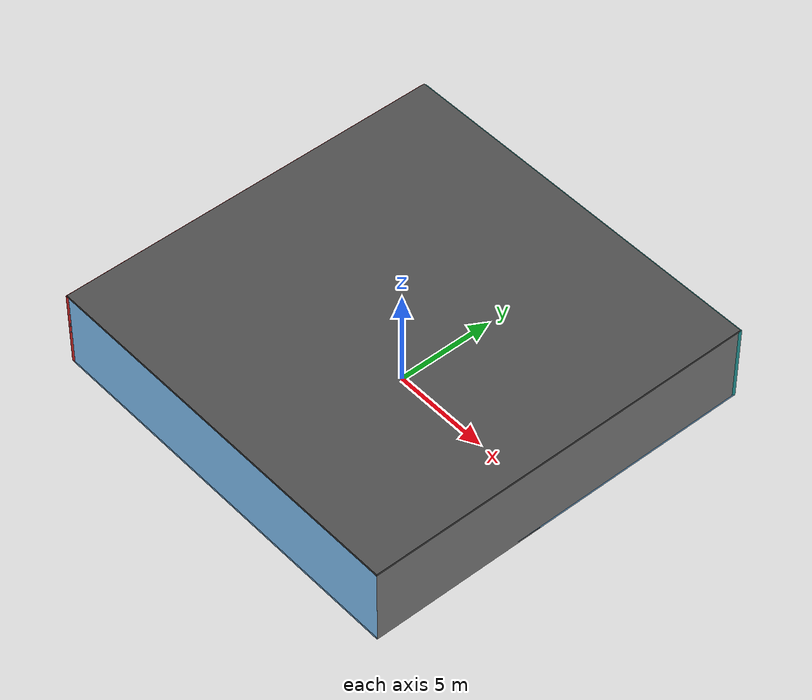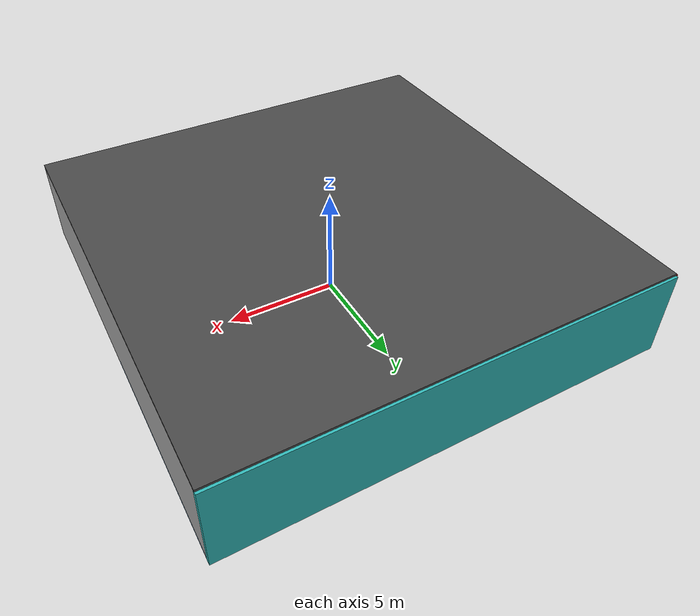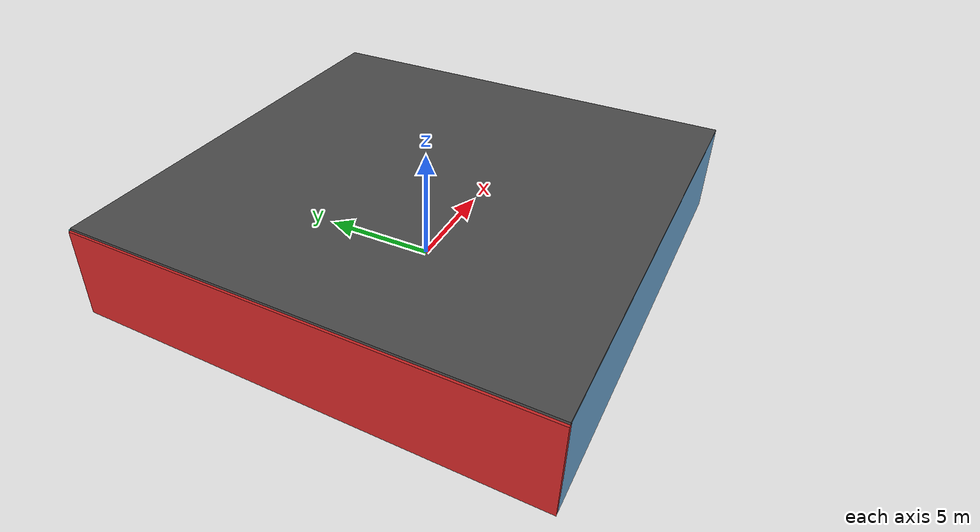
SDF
<sdf version="1.4">
 <world name="default">
  <physics type="ode">
   <max_step_size>0.001</max_step_size>
   <real_time_factor>1</real_time_factor>
   <real_time_update_rate>1000</real_time_update_rate>
   <gravity>0 0 -9.8</gravity>
  </physics>
  <scene><ambient>0.4 0.4 0.4 1</ambient><background>0.7 0.7 0.7 1</background><shadows>1</shadows></scene>
  <model name="Surrounding">
   <static>1</static>
   <link name="Ceiling">
    <collision name="Ceiling_Collision"><geometry><box><size>20 20 0.1</size></box></geometry></collision>
    <visual name="Ceiling_Visual">
     <geometry><box><size>20 20 0.1</size></box></geometry>
     <material>
      <script><uri>file://media/materials/scripts/gazebo.material</uri><name>Gazebo/DarkGrey</name></script>
     </material>
    </visual>
    <pose>0 0 4.05 0 0 0</pose>
   </link>
   <link name="Wall_South">
    <collision name="Wall_South_Collision">
     <geometry><box><size>20 0 4</size></box></geometry>
     <pose>0 0 2 0 -0 0</pose>
    </collision>
    <visual name="Wall_South_Visual">
     <pose>0 0 2 0 -0 0</pose>
     <geometry><box><size>20 0 4</size></box></geometry>
     <material>
      <script><uri>file://media/materials/scripts/gazebo.material</uri><name>Gazebo/SkyBlue</name></script>
     </material>
    </visual>
    <velocity_decay><linear>0</linear><angular>0</angular></velocity_decay>
    <pose>0 -10 0 0 -0 0</pose>
   </link>
   <link name="Wall_East">
    <collision name="Wall_21_Collision">
     <geometry><box><size>20 0 4</size></box></geometry>
     <pose>0 0 2 0 -0 0</pose>
    </collision>
    <visual name="Wall_21_Visual">
     <pose>0 0 2 0 -0 0</pose>
     <geometry><box><size>20 0 4</size></box></geometry>
     <material>
      <script><uri>file://media/materials/scripts/gazebo.material</uri><name>Gazebo/Grey</name></script>
     </material>
    </visual>
    <velocity_decay><linear>0</linear><angular>0</angular></velocity_decay>
    <pose>10 0 0 0 -0 1.5708</pose>
   </link>
   <link name="Wall_North">
    <collision name="Wall_22_Collision">
     <geometry><box><size>20 0.2 4</size></box></geometry>
     <pose>0 0 2 0 -0 0</pose>
    </collision>
    <visual name="Wall_22_Visual">
     <pose>0 0 2 0 -0 0</pose>
     <geometry><box><size>20 0.2 4</size></box></geometry>
     <material>
      <script><uri>file://media/materials/scripts/gazebo.material</uri><name>Gazebo/TurquoiseGlow</name></script>
     </material>
    </visual>
    <velocity_decay><linear>0</linear><angular>0</angular></velocity_decay>
    <pose>0 10 0 0 -0 0</pose>
   </link>
   <link name="Wall_West">
    <collision name="Wall_23_Collision">
     <geometry><box><size>20 0.2 4</size></box></geometry>
     <pose>0 0 2 0 -0 0</pose>
    </collision>
    <visual name="Wall_23_Visual">
     <pose>0 0 2 0 -0 0</pose>
     <geometry><box><size>20 0.2 4</size></box></geometry>
     <material>
      <script><uri>file://media/materials/scripts/gazebo.material</uri><name>Gazebo/Red</name></script>
     </material>
    </visual>
    <velocity_decay><linear>0</linear><angular>0</angular></velocity_decay>
    <pose>-10 0 0 0 0 -1.5708</pose>
   </link>
   <link name="Ground_link">
    <collision name="collision">
     <pose>0 0 .05 0 -0 0</pose>
     <geometry><box><size>20 20 0.1</size></box></geometry>
    </collision>
    <visual name="visual">
     <pose>0 0 .05 0 -0 0</pose>
     <geometry><box><size>20 20 0.1</size></box></geometry>
     <material>
      <script><uri>file://media/materials/scripts/gazebo.material</uri><name>Gazebo/SkyBlue</name></script>
     </material>
    </visual>
   </link>
   <static>1</static>
  </model>
  <spherical_coordinates>
   <surface_model>EARTH_WGS84</surface_model>
   <latitude_deg>0</latitude_deg>
   <longitude_deg>0</longitude_deg>
   <elevation>0</elevation>
   <heading_deg>0</heading_deg>
  </spherical_coordinates>
  <light name="lightball_0" type="diffuse">
   <diffuse>0.8 0.8 0.8 1</diffuse>
   <specular>0.2 0.2 0.2 1</specular>
   <attenuation>
    <range>100</range>
    <constant>0.7</constant>
    <linear>0.01</linear>
    <quadratic>0.001</quadratic>
   </attenuation>
   <direction>-0.5 0.1 -0.9</direction>
   <pose>-2.53146726751 -1.73597785483 2.41256352775 0 0 0</pose>
  </light>
  <light name="lightball_1" type="diffuse">
   <diffuse>0.8 0.8 0.8 1</diffuse>
   <specular>0.2 0.2 0.2 1</specular>
   <attenuation>
    <range>100</range>
    <constant>0.7</constant>
    <linear>0.01</linear>
    <quadratic>0.001</quadratic>
   </attenuation>
   <direction>-0.5 0.1 -0.9</direction>
   <pose>1.21664571712 -4.4150524968 1.41395930096 0 0 0</pose>
  </light>
  <light name="lightball_2" type="diffuse">
   <diffuse>0.8 0.8 0.8 1</diffuse>
   <specular>0.2 0.2 0.2 1</specular>
   <attenuation>
    <range>100</range>
    <constant>0.7</constant>
    <linear>0.01</linear>
    <quadratic>0.001</quadratic>
   </attenuation>
   <direction>-0.5 0.1 -0.9</direction>
   <pose>-5.62556201995 -6.82898764995 0.891670921013 0 0 0</pose>
  </light>
  <light name="lightball_3" type="diffuse">
   <diffuse>0.8 0.8 0.8 1</diffuse>
   <specular>0.2 0.2 0.2 1</specular>
   <attenuation>
    <range>100</range>
    <constant>0.7</constant>
    <linear>0.01</linear>
    <quadratic>0.001</quadratic>
   </attenuation>
   <direction>-0.5 0.1 -0.9</direction>
   <pose>1.67421006112 3.59899909754 1.1266352718 0 0 0</pose>
  </light>
  <light name="lightball_4" type="diffuse">
   <diffuse>0.8 0.8 0.8 1</diffuse>
   <specular>0.2 0.2 0.2 1</specular>
   <attenuation>
    <range>100</range>
    <constant>0.7</constant>
    <linear>0.01</linear>
    <quadratic>0.001</quadratic>
   </attenuation>
   <direction>-0.5 0.1 -0.9</direction>
   <pose>5.78286555013 7.99266834318 3.01042726191 0 0 0</pose>
  </light>
  <light name="lightball_5" type="diffuse">
   <diffuse>0.8 0.8 0.8 1</diffuse>
   <specular>0.2 0.2 0.2 1</specular>
   <attenuation>
    <range>100</range>
    <constant>0.7</constant>
    <linear>0.01</linear>
    <quadratic>0.001</quadratic>
   </attenuation>
   <direction>-0.5 0.1 -0.9</direction>
   <pose>-1.79288785186 -0.307289073172 3.46354312114 0 0 0</pose>
  </light>
  <light name="lightball_6" type="diffuse">
   <diffuse>0.8 0.8 0.8 1</diffuse>
   <specular>0.2 0.2 0.2 1</specular>
   <attenuation>
    <range>100</range>
    <constant>0.7</constant>
    <linear>0.01</linear>
    <quadratic>0.001</quadratic>
   </attenuation>
   <direction>-0.5 0.1 -0.9</direction>
   <pose>6.40864129881 -3.29458765013 2.82100076494 0 0 0</pose>
  </light>
  <light name="lightball_7" type="diffuse">
   <diffuse>0.8 0.8 0.8 1</diffuse>
   <specular>0.2 0.2 0.2 1</specular>
   <attenuation>
    <range>100</range>
    <constant>0.7</constant>
    <linear>0.01</linear>
    <quadratic>0.001</quadratic>
   </attenuation>
   <direction>-0.5 0.1 -0.9</direction>
   <pose>3.33502625739 -5.55103516125 1.02313464936 0 0 0</pose>
  </light>
  <light name="lightball_8" type="diffuse">
   <diffuse>0.8 0.8 0.8 1</diffuse>
   <specular>0.2 0.2 0.2 1</specular>
   <attenuation>
    <range>100</range>
    <constant>0.7</constant>
    <linear>0.01</linear>
    <quadratic>0.001</quadratic>
   </attenuation>
   <direction>-0.5 0.1 -0.9</direction>
   <pose>-4.64240622993 -7.36958212847 3.13378626224 0 0 0</pose>
  </light>
  <light name="lightball_9" type="diffuse">
   <diffuse>0.8 0.8 0.8 1</diffuse>
   <specular>0.2 0.2 0.2 1</specular>
   <attenuation>
    <range>100</range>
    <constant>0.7</constant>
    <linear>0.01</linear>
    <quadratic>0.001</quadratic>
   </attenuation>
   <direction>-0.5 0.1 -0.9</direction>
   <pose>2.24003903338 -1.34167113591 1.3769569335 0 0 0</pose>
  </light>
  <light name="lightball_10" type="diffuse">
   <diffuse>0.8 0.8 0.8 1</diffuse>
   <specular>0.2 0.2 0.2 1</specular>
   <attenuation>
    <range>100</range>
    <constant>0.7</constant>
    <linear>0.01</linear>
    <quadratic>0.001</quadratic>
   </attenuation>
   <direction>-0.5 0.1 -0.9</direction>
   <pose>-3.30339602794 -6.83384031483 2.8967322663 0 0 0</pose>
  </light>
  <include>
   <uri>model://robocup_3Dsim_goal</uri>
   <pose>-6.87280014438 7.42817097828 0 0 0 2.03227357491</pose>
  </include>
  <include>
   <uri>model://textured_shapes</uri>
   <pose>-4.25817710904 -7.15730512381 0 0 0 1.58454505646</pose>
  </include>
  <include><uri>model://table</uri><pose>-1.20825770311 -8.14446550472 0 0 0 0.866161476688</pose></include>
  <include>
   <uri>model://robocup_3Dsim_goal</uri>
   <pose>-1.69760509417 -4.93912115156 0 0 0 3.13201966039</pose>
  </include>
  <include><uri>model://table</uri><pose>-1.7634264504 5.18177995407 0 0 0 3.0093683425</pose></include>
  <include>
   <uri>model://textured_shapes</uri>
   <pose>-1.55029331277 7.55880343702 0 0 0 2.50915753445</pose>
  </include>
  <include>
   <uri>model://construction_cone</uri>
   <pose>4.92548830136 -8.21388433294 0 0 0 2.55064619123</pose>
  </include>
  <include><uri>model://cabinet</uri><pose>7.85457616687 1.05804383274 0 0 0 2.54922332086</pose></include>
  <include>
   <uri>model://construction_cone</uri>
   <pose>6.86544603832 4.50599751866 0 0 0 3.06066017764</pose>
  </include>
 </world>
</sdf>

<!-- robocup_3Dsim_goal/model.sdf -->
<sdf version="1.5">
  <model name="robocup_3d_goal">
    <static>true</static>
    <link name="left_post">
      <pose>0 1.05 0.45 0 0 0</pose>
      <collision name="collision">
        <geometry>
          <cylinder>
            <radius>0.05</radius>
            <length>0.9</length>
          </cylinder>
        </geometry>
      </collision>
      <visual name="visual">
        <geometry>
          <cylinder>
            <radius>0.05</radius>
            <length>0.9</length>
          </cylinder>
        </geometry>
        <material>
          <script>
            <uri>file://media/materials/scripts/gazebo.material</uri>
            <name>Gazebo/ZincYellow</name>
          </script>
        </material>
      </visual>
    </link>
    <link name="left_support_horiz_lower">
      <pose>0.30 1.05 0.01 0 0 0</pose>
      <collision name="collision">
        <geometry>
          <box>
            <size>0.50 0.02 0.02</size>
          </box>
        </geometry>
      </collision>
      <visual name="visual">
        <geometry>
          <box>
            <size>0.50 0.02 0.02</size>
          </box>
        </geometry>
        <material>
          <script>
            <uri>file://media/materials/scripts/gazebo.material</uri>
            <name>Gazebo/White</name>
          </script>
        </material>
      </visual>
    </link>
    <link name="left_support_horiz_upper">
      <pose>0.30 1.05 0.79 0 0 0</pose>
      <collision name="collision">
        <geometry>
          <box>
            <size>0.50 0.02 0.02</size>
          </box>
        </geometry>
      </collision>
      <visual name="visual">
        <geometry>
          <box>
            <size>0.50 0.02 0.02</size>
          </box>
        </geometry>
        <material>
          <script>
            <uri>file://media/materials/scripts/gazebo.material</uri>
            <name>Gazebo/White</name>
          </script>
        </material>
      </visual>
    </link>
    <link name="left_support_vertical">
      <pose>0.56 1.05 0.4 0 1.5708 0</pose>
      <collision name="collision">
        <geometry>
          <box>
            <size>0.80 0.02 0.02</size>
          </box>
        </geometry>
      </collision>
      <visual name="visual">
        <geometry>
          <box>
            <size>0.80 0.02 0.02</size>
          </box>
        </geometry>
        <material>
          <script>
            <uri>file://media/materials/scripts/gazebo.material</uri>
            <name>Gazebo/White</name>
          </script>
        </material>
      </visual>
    </link>
    <link name="right_support_horiz_lower">
      <pose>0.30 -1.05 0.01 0 0 0</pose>
      <collision name="collision">
        <geometry>
          <box>
            <size>0.50 0.02 0.02</size>
          </box>
        </geometry>
      </collision>
      <visual name="visual">
        <geometry>
          <box>
            <size>0.50 0.02 0.02</size>
          </box>
        </geometry>
        <material>
          <script>
            <uri>file://media/materials/scripts/gazebo.material</uri>
            <name>Gazebo/White</name>
          </script>
        </material>
      </visual>
    </link>
    <link name="right_support_horiz_upper">
      <pose>0.30 -1.05 0.79 0 0 0</pose>
      <collision name="collision">
        <geometry>
          <box>
            <size>0.50 0.02 0.02</size>
          </box>
        </geometry>
      </collision>
      <visual name="visual">
        <geometry>
          <box>
            <size>0.50 0.02 0.02</size>
          </box>
        </geometry>
        <material>
          <script>
            <uri>file://media/materials/scripts/gazebo.material</uri>
            <name>Gazebo/White</name>
          </script>
        </material>
      </visual>
    </link>
    <link name="right_support_vertical">
      <pose>0.56 -1.05 0.4 0 1.5708 0</pose>
      <collision name="collision">
        <geometry>
          <box>
            <size>0.80 0.02 0.02</size>
          </box>
        </geometry>
      </collision>
      <visual name="visual">
        <geometry>
          <box>
            <size>0.80 0.02 0.02</size>
          </box>
        </geometry>
        <material>
          <script>
            <uri>file://media/materials/scripts/gazebo.material</uri>
            <name>Gazebo/White</name>
          </script>
        </material>
      </visual>
    </link>
    <link name="center_support_horiz_lower">
      <pose>0.56 0 0.01 0 1.5708 0</pose>
      <collision name="collision">
        <geometry>
          <box>
            <size>0.02 2.08 0.02</size>
          </box>
        </geometry>
      </collision>
      <visual name="visual">
        <geometry>
          <box>
            <size>0.02 2.08 0.02</size>
          </box>
        </geometry>
        <material>
          <script>
            <uri>file://media/materials/scripts/gazebo.material</uri>
            <name>Gazebo/White</name>
          </script>
        </material>
      </visual>
    </link>
    <link name="center_support_horiz_upper">
      <pose>0.56 0 0.79 0 1.5708 0</pose>
      <collision name="collision">
        <geometry>
          <box>
            <size>0.02 2.08 0.02</size>
          </box>
        </geometry>
      </collision>
      <visual name="visual">
        <geometry>
          <box>
            <size>0.02 2.08 0.02</size>
          </box>
        </geometry>
        <material>
          <script>
            <uri>file://media/materials/scripts/gazebo.material</uri>
            <name>Gazebo/White</name>
          </script>
        </material>
      </visual>
    </link>
    <link name="right_post">
      <pose>0 -1.05 0.45 0 0 0</pose>
      <collision name="collision">
        <geometry>
          <cylinder>
            <radius>0.05</radius>
            <length>0.9</length>
          </cylinder>
        </geometry>
      </collision>
      <visual name="visual">
        <geometry>
          <cylinder>
            <radius>0.05</radius>
            <length>0.9</length>
          </cylinder>
        </geometry>
        <material>
          <script>
            <uri>file://media/materials/scripts/gazebo.material</uri>
            <name>Gazebo/ZincYellow</name>
          </script>
        </material>
      </visual>
    </link>
    <link name="crossbar">
      <pose>0 0 0.85 1.57 1.57 0</pose>
      <collision name="collision">
        <geometry>
          <cylinder>
            <radius>0.05</radius>
            <length>2.0</length>
          </cylinder>
        </geometry>
      </collision>
      <visual name="visual">
        <geometry>
          <cylinder>
            <radius>0.05</radius>
            <length>2.0</length>
          </cylinder>
        </geometry>
        <material>
          <script>
            <uri>file://media/materials/scripts/gazebo.material</uri>
            <name>Gazebo/ZincYellow</name>
          </script>
        </material>
      </visual>
    </link>
    <link name="center_net">
      <pose>0.56 0 0.40 0 0 0</pose>
      <collision name="collision">
        <geometry>
          <box>
            <size>0.01 2.1 0.80</size>
          </box>
        </geometry>
      </collision>
      <visual name="visual">
        <geometry>
          <box>
            <size>0.01 2.1 0.80</size>
          </box>
        </geometry>
        <material>
          <script>
            <uri>model://../model_source/models/robocup09_spl_field/materials/scripts/</uri>
            <uri>model://../model_source/models/robocup09_spl_field/materials/textures/</uri>
            <name>RoboCup/Net</name>
          </script>
        </material>
      </visual>
    </link>
    <link name="left_net">
      <pose>0.30 1.05 0.40 0 0 0</pose>
      <collision name="collision">
        <geometry>
          <box>
            <size>0.50 0.01 0.76</size>
          </box>
        </geometry>
      </collision>
      <visual name="visual">
        <geometry>
          <box>
            <size>0.50 0.01 0.76</size>
          </box>
        </geometry>
        <material>
          <script>
            <uri>model://../model_source/models/robocup09_spl_field/materials/scripts/</uri>
            <uri>model://../model_source/models/robocup09_spl_field/materials/textures/</uri>
            <name>RoboCup/Net</name>
          </script>
        </material>
      </visual>
    </link>
    <link name="right_net">
      <pose>0.30 -1.05 0.40 0 0 0</pose>
      <collision name="collision">
        <geometry>
          <box>
            <size>0.50 0.01 0.76</size>
          </box>
        </geometry>
      </collision>
      <visual name="visual">
        <geometry>
          <box>
            <size>0.50 0.01 0.76</size>
          </box>
        </geometry>
        <material>
          <script>
            <uri>model://../model_source/models/robocup09_spl_field/materials/scripts/</uri>
            <uri>model://../model_source/models/robocup09_spl_field/materials/textures/</uri>
            <name>RoboCup/Net</name>
          </script>
        </material>
      </visual>
    </link>
  </model>
</sdf>

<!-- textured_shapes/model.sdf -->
<sdf version="1.6">
  <model name="textured_shapes">
    <pose>0 0 0.5 0 0 0</pose>
    <link name="box">
      <pose>0 -1.5 0 0 0 0</pose>
      <collision name="collision">
        <geometry>
          <box>
            <size>1 1 1</size>
          </box>
        </geometry>
      </collision>
      <visual name="visual">
        <geometry>
          <box>
            <size>1 1 1</size>
          </box>
        </geometry>
        <material>
          <script>
            <uri>model://../model_source/models/textured_shapes/materials/scripts</uri>
            <uri>model://../model_source/models/textured_shapes/materials/textures</uri>
            <name>TexturedShape/Squares</name>
          </script>
        </material>
      </visual>
    </link>
    <link name="sphere">
      <collision name="collision">
        <geometry>
          <sphere>
            <radius>0.5</radius>
          </sphere>
        </geometry>
      </collision>
      <visual name="visual">
        <geometry>
          <sphere>
            <radius>0.5</radius>
          </sphere>
        </geometry>
        <material>
          <script>
            <uri>model://../model_source/models/textured_shapes/materials/scripts</uri>
            <uri>model://../model_source/models/textured_shapes/materials/textures</uri>
            <name>TexturedShape/Squares</name>
          </script>
        </material>
      </visual>
    </link>
    <link name="cylinder">
      <pose>0 1.5 0 0 0 0</pose>
      <collision name="collision">
        <geometry>
          <cylinder>
            <radius>0.5</radius>
            <length>1</length>
          </cylinder>
        </geometry>
      </collision>
      <visual name="visual">
        <geometry>
          <cylinder>
            <radius>0.5</radius>
            <length>1</length>
          </cylinder>
        </geometry>
        <material>
          <script>
            <uri>model://../model_source/models/textured_shapes/materials/scripts</uri>
            <uri>model://../model_source/models/textured_shapes/materials/textures</uri>
            <name>TexturedShape/Squares</name>
          </script>
        </material>
      </visual>
    </link>
  </model>
</sdf>

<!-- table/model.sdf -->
<sdf version="1.5">
  <model name="table">
    <static>true</static>
    <link name="link">
      <collision name="surface">
        <pose>0 0 1.0 0 0 0</pose>
        <geometry>
          <box>
            <size>1.5 0.8 0.03</size>
          </box>
        </geometry>
        <surface>
          <friction>
            <ode>
              <mu>0.6</mu>
              <mu2>0.6</mu2>
            </ode>
          </friction>
        </surface>
      </collision>
      <visual name="visual1">
        <pose>0 0 1.0 0 0 0</pose>
        <geometry>
          <box>
            <size>1.5 0.8 0.03</size>
          </box>
        </geometry>
        <material>
          <script>
            <uri>model://media/materials/scripts/gazebo.material</uri>
            <name>Gazebo/Wood</name>
          </script>
        </material>
      </visual>
      <collision name="front_left_leg">
        <pose>0.68 0.38 0.5 0 0 0</pose>
        <geometry>
          <cylinder>
            <radius>0.02</radius>
            <length>1.0</length>
          </cylinder>
        </geometry>
      </collision>
      <visual name="front_left_leg">
        <pose>0.68 0.38 0.5 0 0 0</pose>
        <geometry>
          <cylinder>
            <radius>0.02</radius>
            <length>1.0</length>
          </cylinder>
        </geometry>
        <material>
          <script>
            <uri>model://media/materials/scripts/gazebo.material</uri>
            <name>Gazebo/Grey</name>
          </script>
        </material>
      </visual>
      <collision name="front_right_leg">
        <pose>0.68 -0.38 0.5 0 0 0</pose>
        <geometry>
          <cylinder>
            <radius>0.02</radius>
            <length>1.0</length>
          </cylinder>
        </geometry>
      </collision>
      <visual name="front_right_leg">
        <pose>0.68 -0.38 0.5 0 0 0</pose>
        <geometry>
          <cylinder>
            <radius>0.02</radius>
            <length>1.0</length>
          </cylinder>
        </geometry>
        <material>
          <script>
            <uri>model://media/materials/scripts/gazebo.material</uri>
            <name>Gazebo/Grey</name>
          </script>
        </material>
      </visual>
      <collision name="back_right_leg">
        <pose>-0.68 -0.38 0.5 0 0 0</pose>
        <geometry>
          <cylinder>
            <radius>0.02</radius>
            <length>1.0</length>
          </cylinder>
        </geometry>
      </collision>
      <visual name="back_right_leg">
        <pose>-0.68 -0.38 0.5 0 0 0</pose>
        <geometry>
          <cylinder>
            <radius>0.02</radius>
            <length>1.0</length>
          </cylinder>
        </geometry>
        <material>
          <script>
            <uri>model://media/materials/scripts/gazebo.material</uri>
            <name>Gazebo/Grey</name>
          </script>
        </material>
      </visual>
      <collision name="back_left_leg">
        <pose>-0.68 0.38 0.5 0 0 0</pose>
        <geometry>
          <cylinder>
            <radius>0.02</radius>
            <length>1.0</length>
          </cylinder>
        </geometry>
      </collision>
      <visual name="back_left_leg">
        <pose>-0.68 0.38 0.5 0 0 0</pose>
        <geometry>
          <cylinder>
            <radius>0.02</radius>
            <length>1.0</length>
          </cylinder>
        </geometry>
        <material>
          <script>
            <uri>model://media/materials/scripts/gazebo.material</uri>
            <name>Gazebo/Grey</name>
          </script>
        </material>
      </visual>
    </link>
  </model>
</sdf>

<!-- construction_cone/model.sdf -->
<sdf version="1.5">
  <model name="Construction Cone">
    <link name="link">
      <collision name="collision">
        <geometry>
          <mesh>
            <scale>10 10 10</scale>
            <uri>file://isr-testbed/construction_cone/meshes/construction_cone.dae</uri>
          </mesh>
        </geometry>
      </collision>
      <visual name="visual">
        <geometry>
          <mesh>
            <scale>10 10 10</scale>
            <uri>file://isr-testbed/construction_cone/meshes/construction_cone.dae</uri>
          </mesh>
        </geometry>
      </visual>
    </link>
  </model>
</sdf>

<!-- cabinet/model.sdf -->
<sdf version="1.5">
  <model name="cabinet">
    <static>true</static>
    <link name="cabinet_bottom_plate">
      <inertial>
        <pose>0 0 -1 0 0 0</pose>
        <inertia>
          <ixx>2.050000</ixx>
          <ixy>0</ixy>
          <ixz>0</ixz>
          <iyy>2.050000</iyy>
          <iyz>0</iyz>
          <izz>2.050000</izz>
        </inertia>
        <mass>25.000000</mass>
      </inertial>
      <collision name="cabinet_bottom_plate_geom">
        <pose>0 0 0.010000 0 0 0</pose>
        <geometry>
          <box>
            <size>0.450000 0.450000 0.020000</size>
          </box>
        </geometry>
      </collision>
      <visual name="cabinet_bottom_plate_geom_visual">
        <pose>0 0 0.010000 0 0 0</pose>
        <geometry>
          <box>
            <size>0.450000 0.450000 0.020000</size>
          </box>
        </geometry>
        <material>
          <script>
            <uri>model://media/materials/scripts/gazebo.material</uri>
            <name>Gazebo/Wood</name>
          </script>
        </material>
      </visual>
      <collision name="cabinet_bottom_plate_geom_cabinet_back_plate">
        <pose>0.235000 0 0.510000 0 0 0</pose>
        <geometry>
          <box>
            <size>0.020000 0.450000 1.020000</size>
          </box>
        </geometry>
      </collision>
      <visual name="cabinet_bottom_plate_geom_cabinet_back_plate_visual">
        <pose>0.235000 0 0.510000 0 0 0</pose>
        <geometry>
          <box>
            <size>0.020000 0.450000 1.020000</size>
          </box>
        </geometry>
        <material>
          <script>
            <uri>model://media/materials/scripts/gazebo.material</uri>
            <name>Gazebo/Wood</name>
          </script>
        </material>
      </visual>
      <collision name="cabinet_bottom_plate_geom_cabinet_left_plate">
        <pose>0 0.235000 0.510000 0 0 0</pose>
        <geometry>
          <box>
            <size>0.450000 0.020000 1.020000</size>
          </box>
        </geometry>
      </collision>
      <visual name="cabinet_bottom_plate_geom_cabinet_left_plate_visual">
        <pose>0 0.235000 0.510000 0 0 0</pose>
        <geometry>
          <box>
            <size>0.450000 0.020000 1.020000</size>
          </box>
        </geometry>
        <material>
          <script>
            <uri>model://media/materials/scripts/gazebo.material</uri>
            <name>Gazebo/Wood</name>
          </script>
        </material>
      </visual>
      <collision name="cabinet_bottom_plate_geom_cabinet_middle_plate">
        <pose>0 0 0.510000 0 0 0</pose>
        <geometry>
          <box>
            <size>0.450000 0.450000 0.020000</size>
          </box>
        </geometry>
      </collision>
      <visual name="cabinet_bottom_plate_geom_cabinet_middle_plate_visual">
        <pose>0 0 0.510000 0 0 0</pose>
        <geometry>
          <box>
            <size>0.450000 0.450000 0.020000</size>
          </box>
        </geometry>
        <material>
          <script>
            <uri>model://media/materials/scripts/gazebo.material</uri>
            <name>Gazebo/Wood</name>
          </script>
        </material>
      </visual>
      <collision name="cabinet_bottom_plate_geom_cabinet_right_plate">
        <pose>0 -0.235000 0.510000 0 0 0</pose>
        <geometry>
          <box>
            <size>0.450000 0.020000 1.020000</size>
          </box>
        </geometry>
      </collision>
      <visual name="cabinet_bottom_plate_geom_cabinet_right_plate_visual">
        <pose>0 -0.235000 0.510000 0 0 0</pose>
        <geometry>
          <box>
            <size>0.450000 0.020000 1.020000</size>
          </box>
        </geometry>
        <material>
          <script>
            <uri>model://media/materials/scripts/gazebo.material</uri>
            <name>Gazebo/Wood</name>
          </script>
        </material>
      </visual>
      <collision name="cabinet_bottom_plate_geom_cabinet_top_plate">
        <pose>0 0 1.010000 0 0 0</pose>
        <geometry>
          <box>
            <size>0.450000 0.450000 0.020000</size>
          </box>
        </geometry>
      </collision>
      <visual name="cabinet_bottom_plate_geom_cabinet_top_plate_visual">
        <pose>0 0 1.010000 0 0 0</pose>
        <geometry>
          <box>
            <size>0.450000 0.450000 0.020000</size>
          </box>
        </geometry>
        <material>
          <script>
            <uri>model://media/materials/scripts/gazebo.material</uri>
            <name>Gazebo/Wood</name>
          </script>
        </material>
      </visual>
    </link>
  </model>
</sdf>
